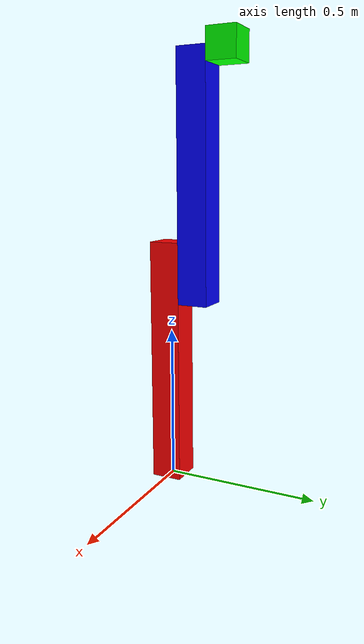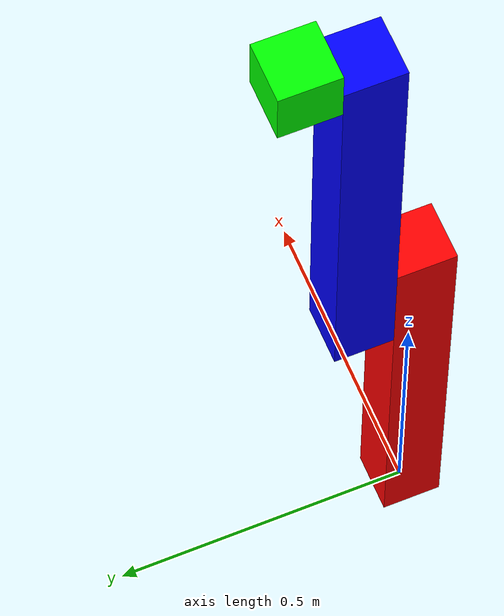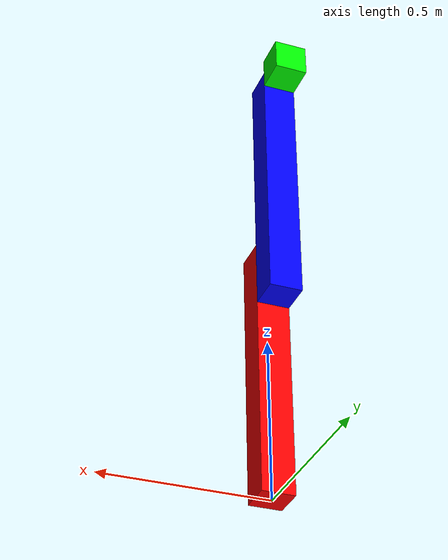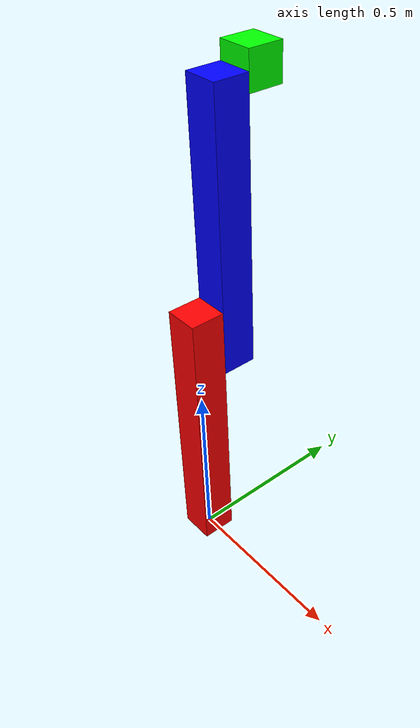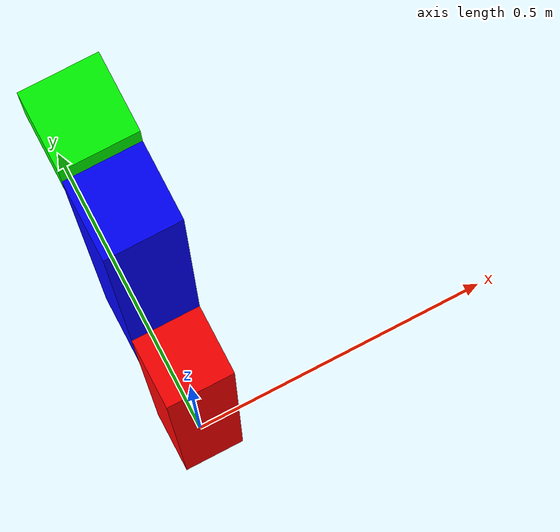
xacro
<robot xmlns:xacro="http://www.ros.org/wiki/xacro" name="simple_robot">
    <xacro:include filename="parameters.xacro" />
    <xacro:include filename="gazebo.xacro" />
    <xacro:include filename="effort_control.xacro" />
    <link name="world" />

    <joint name="fixed_joint" type="fixed">
        <parent link="world" />
        <child link="first_link" />
    </joint>

    <link name="first_link">
        <xacro:inertia_body />

        <visual>
            <origin xyz="0.0 0.0 ${s}" rpy="0.0 0.0 0.0" />
            <geometry>
                <box size="${a} ${b} ${c}" />
            </geometry>
            <material name="red" />
        </visual>
        <collision>
            <origin xyz="0.0 0.0 ${s}" rpy="0.0 0.0 0.0" />
            <geometry>
                <box size="${a} ${b} ${c}" />
            </geometry>
        </collision>
    </link>

    <joint name="first_joint" type="revolute">
        <origin xyz="0.0 ${b} ${q}" rpy="0.0 0.0 0.0" />
        <parent link="first_link" />
        <child link="second_link" />
        <axis xyz="0 1 0" />
        <limit lower="-1.5" upper="1.5" effort="5000.0" velocity="10.0" />
        <dynamics damping="1.0" friction="1.0" />
    </joint>

    <link name="second_link">
        <xacro:inertia_body />

        <visual>
            <origin xyz="0.0 0.0 ${s}" rpy="0.0 0.0 0.0" />
            <geometry>
                <box size="${a} ${b} ${c}" />
            </geometry>
            <material name="blue" />
        </visual>

        <collision>
            <origin xyz="0.0 0.0 ${s}" rpy="0.0 0.0 0.0" />
            <geometry>
                <box size="${a} ${b} ${c}" />
            </geometry>
        </collision>

    </link>

    <link name="imu_link">
        <inertial>
            <mass value="0.01" />
            <origin xyz="0 0 0" rpy="0 0 0" />
            <inertia
                ixx="1e-5" iyy="1e-5" izz="1e-5"
                ixy="0.0" ixz="0.0" iyz="0.0" />
        </inertial>

        <visual>
            <origin xyz="0.0 0.0 0" rpy="0.0 0.0 0.0" />
            <geometry>
                <box size="0.1 0.1 0.1" />
            </geometry>
            <material name="green" />
        </visual>

        <collision>
            <origin xyz="0.0 0.0 0.1" rpy="0.0 0.0 0.0" />
            <geometry>
                <box size="0.1 0.1 0.1" />
            </geometry>
        </collision>

    </link>

    <joint name="imu_joint" type="fixed">
        <origin xyz="0.0 0.1 ${c}" rpy="0.0 0.0 0.0" />
        <parent link="second_link" />
        <child link="imu_link" />
    </joint>

    <!-- control plugin and definition -->
</robot>

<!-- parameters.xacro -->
<robot xmlns:xacro="http://www.ros.org/wiki/xacro">
    <!-- links -->
     <xacro:property name="a" value="0.1" />
     <xacro:property name="b" value="0.1" />
     <xacro:property name="c" value="0.8" />

     <xacro:property name="s" value="${c/2}" />
     <xacro:property name="q" value="${c-c/4}" />
     <xacro:property name="d" value="2710.0" />
     <xacro:property name="m" value="${d*a*b*c}" />

     <xacro:property name="Ix_body" value="${ (1/12)*m*(b*b+c*c) }" />
     <xacro:property name="Iy_body" value="${ (1/12)*m*(a*a+b*b) }" />
     <xacro:property name="Iz_body" value="${ (1/12)*m*(a*a+c*c) }" />

     <xacro:macro name="inertia_body">
        <inertial>
            <mass value="${m}" />
            <origin xyz="0 0 0" rpy="0 0 ${s}" />
            <inertia ixx="${Ix_body}" ixy="0" ixz="0" iyy="${Iy_body}" iyz="0" izz="${Iz_body}" />
        </inertial>
     </xacro:macro>

     <material name="blue">
        <color rgba="0.0 0.0 1.0 1.0"/>
     </material>

     <material name="red">
        <color rgba="1.0 0.0 0.0 1.0"/>
     </material>

     <material name="green">
        <color rgba="0.0 1.0 0.0 1.0"/>
     </material>
</robot>
